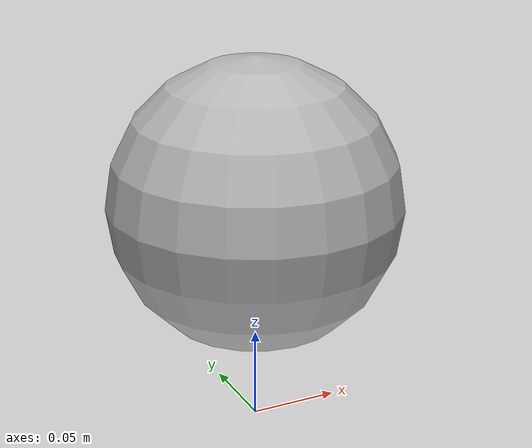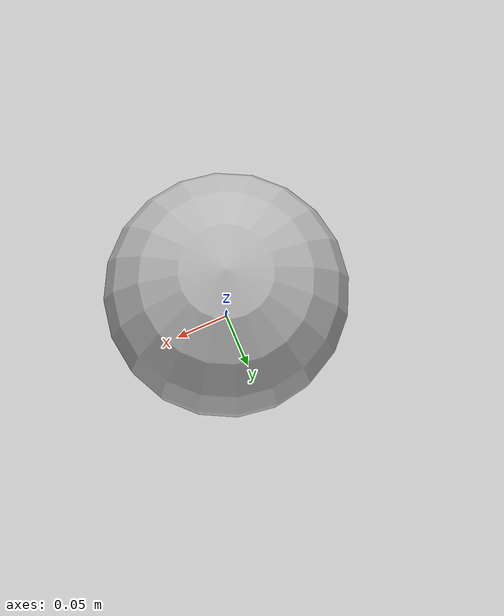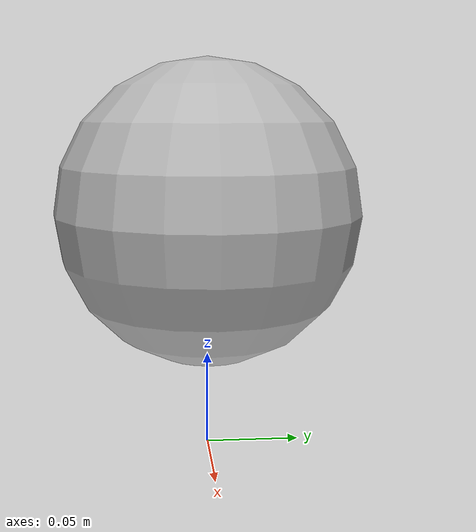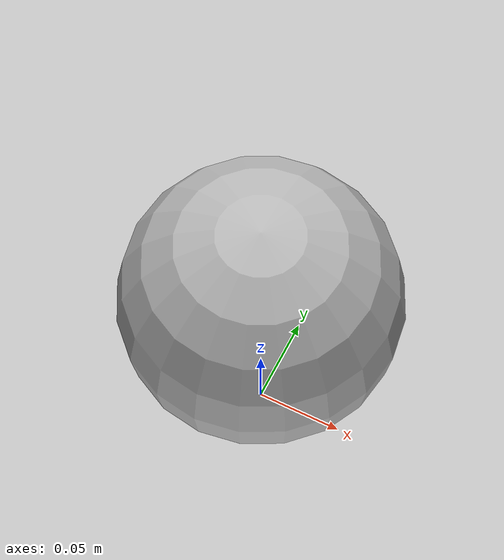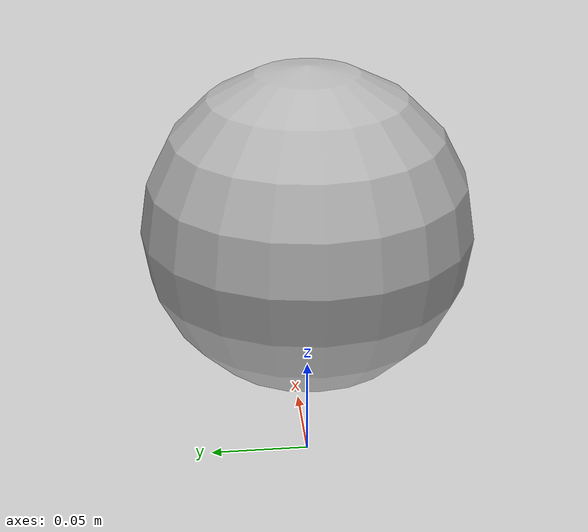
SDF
<?xml version="1.0" ?>
<sdf version="1.5">
  <model name="frc2016_ball">
    <pose>0 0 0.127 0 0 0</pose>
    <link name="link">
      <inertial>
        <mass>0.213</mass>
        <inertia>
          <ixx>0.003226667</ixx>
          <ixy>0</ixy>
          <ixz>0</ixz>
          <iyy>0.003226667</iyy>
          <iyz>0</iyz>
          <izz>0.003226667</izz>
        </inertia>
      </inertial>

      <visual name="visual">
        <geometry>
          <sphere>
            <radius>0.08</radius>
          </sphere>
        </geometry>
      </visual>

      <collision name="collision">
        <geometry>
          <sphere>
            <radius>0.08</radius>
          </sphere>
        </geometry>
        <surface>
          <bounce>
            <restitution_coefficient>0.15937</restitution_coefficient>
            <threshold>0</threshold>
          </bounce>
          <contact>
            <ode>
              <max_vel>100</max_vel>
              <min_depth>0.001</min_depth>
            </ode>
          </contact>
        </surface>
      </collision>
    </link>
  </model>
</sdf>
